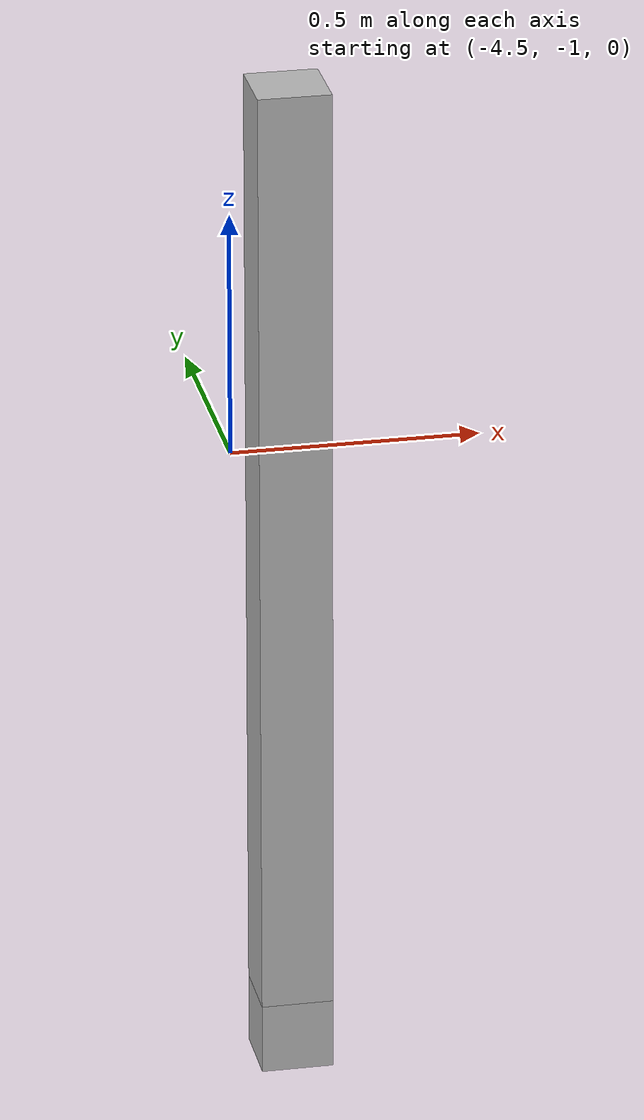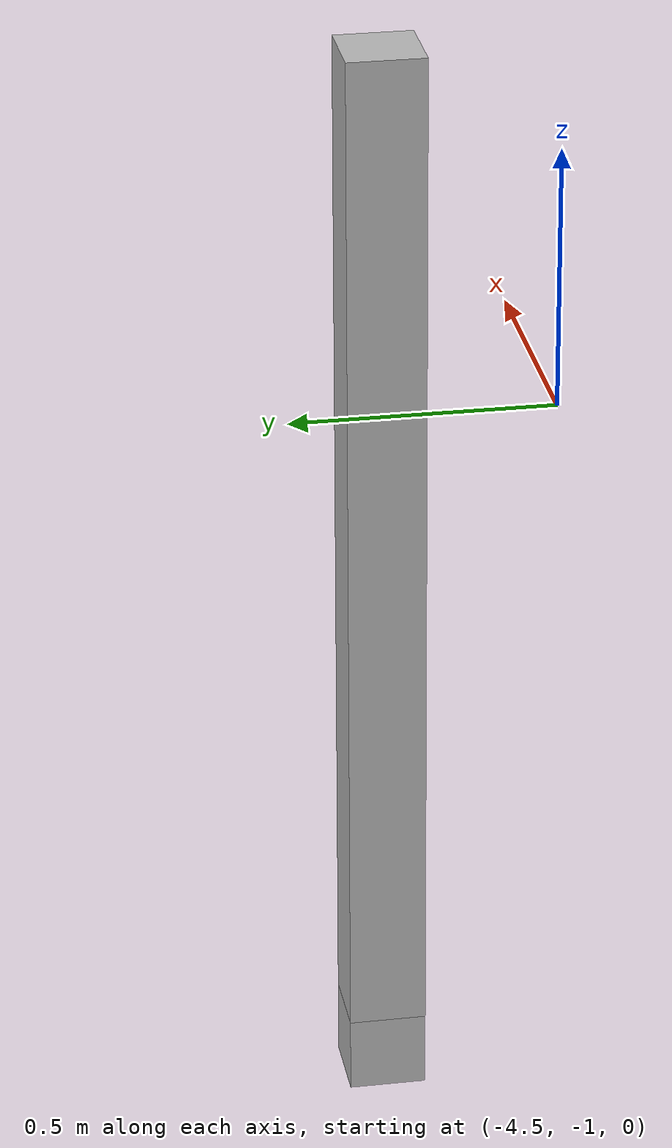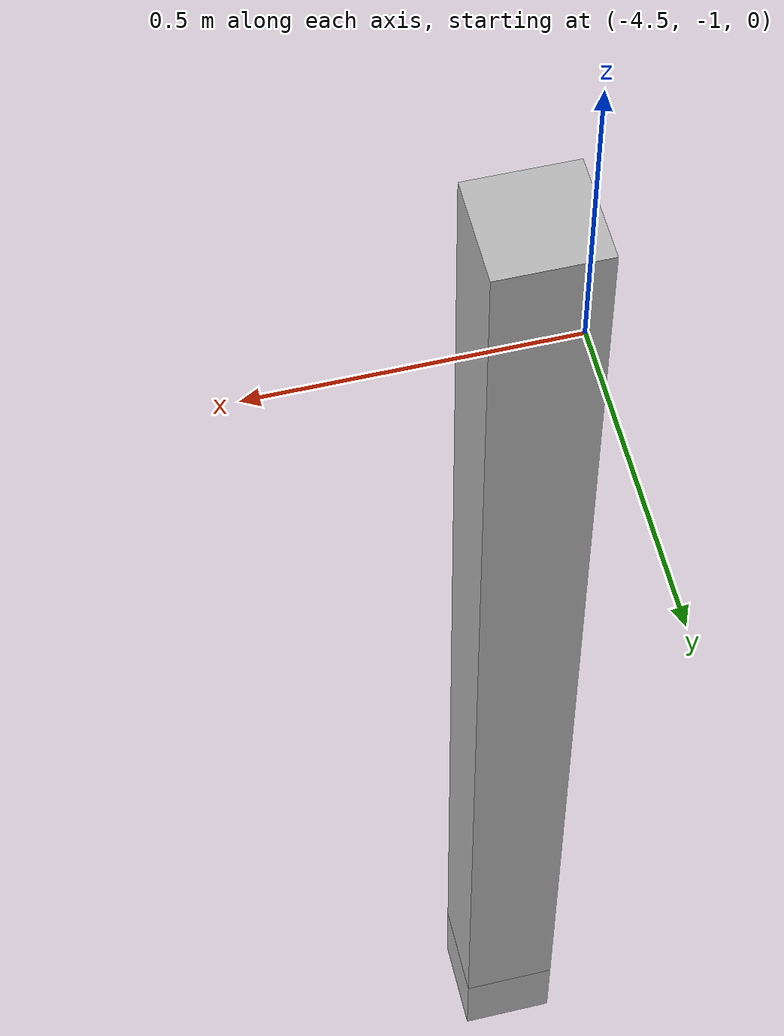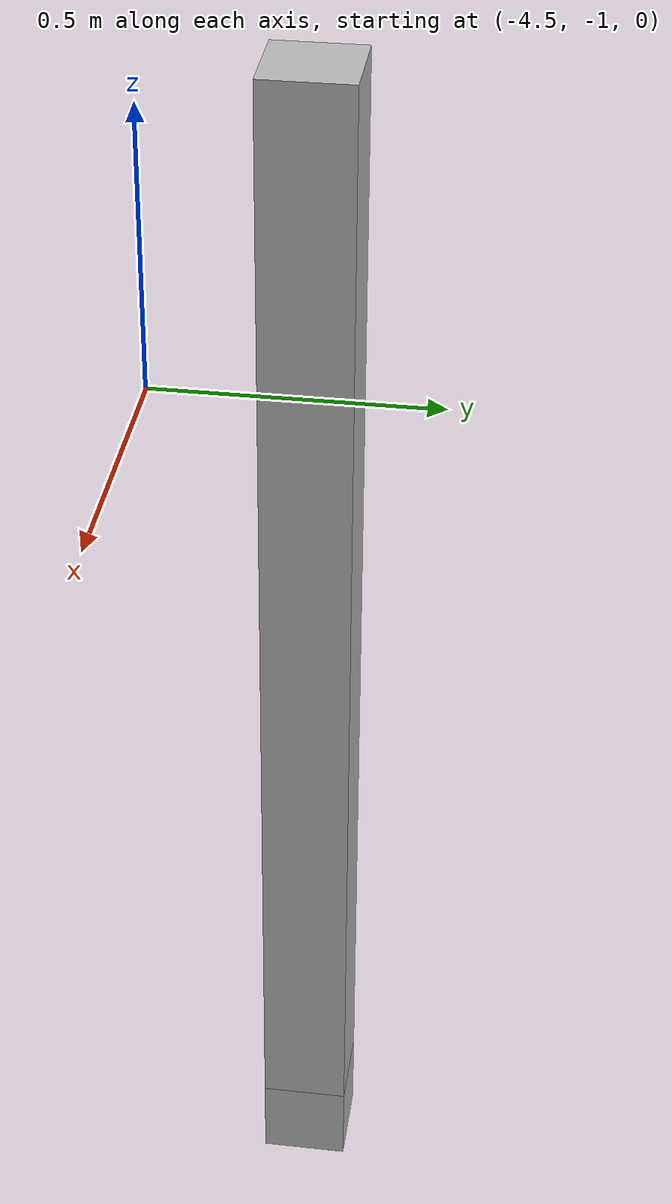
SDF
<sdf version="1.7">
 <world name="default">
  <model name="orthogonal_747_2.000.15_TS">
   <static>1</static>
   <link name="u_link_0_2_1">
    <inertial>
     <mass>1</mass>
     <inertia>
      <ixx>0.166667</ixx>
      <ixy>0</ixy>
      <ixz>0</ixz>
      <iyy>0.166667</iyy>
      <iyz>0</iyz>
      <izz>0.166667</izz>
     </inertia>
    </inertial>
    <pose>2.15 4.3 1.075 0 -0 0</pose>
    <visual name="visual_0">
     <laser_retro>358</laser_retro>
     <geometry><box><size>0.15 1e-06 0.15</size></box></geometry>
     <material>
      <script><name>Gazebo/Grey</name><uri>file://media/materials/scripts/gazebo.material</uri></script>
      <shader type="pixel"><normal_map>__default__</normal_map></shader>
      <ambient>0.678 0.498 0.659 1</ambient>
      <diffuse>0.7 0.7 0.7 1</diffuse>
      <specular>0.01 0.01 0.01 1</specular>
      <emissive>0 0 0 1</emissive>
     </material>
     <pose>0 -0.075 0 0 -0 0</pose>
     <transparency>1</transparency>
    </visual>
    <visual name="visual_1">
     <laser_retro>359</laser_retro>
     <geometry><box><size>0.15 1e-06 0.15</size></box></geometry>
     <material>
      <script><name>Gazebo/Grey</name><uri>file://media/materials/scripts/gazebo.material</uri></script>
      <shader type="pixel"><normal_map>__default__</normal_map></shader>
      <ambient>0.447 0.624 0.812 1</ambient>
      <diffuse>0.7 0.7 0.7 1</diffuse>
      <specular>0.01 0.01 0.01 1</specular>
      <emissive>0 0 0 1</emissive>
     </material>
     <pose>0 0.075 0 0 -0 0</pose>
     <transparency>1</transparency>
    </visual>
    <visual name="visual_2">
     <laser_retro>360</laser_retro>
     <geometry><box><size>0.15 0.15 1e-06</size></box></geometry>
     <material>
      <script><name>Gazebo/Grey</name><uri>file://media/materials/scripts/gazebo.material</uri></script>
      <shader type="pixel"><normal_map>__default__</normal_map></shader>
      <ambient>0.988 0.686 0.243 1</ambient>
      <diffuse>0.7 0.7 0.7 1</diffuse>
      <specular>0.01 0.01 0.01 1</specular>
      <emissive>0 0 0 1</emissive>
     </material>
     <pose>0 0 -0.075 0 -0 0</pose>
     <transparency>1</transparency>
    </visual>
    <visual name="visual_3">
     <laser_retro>361</laser_retro>
     <geometry><box><size>1e-06 0.15 0.15</size></box></geometry>
     <material>
      <script><name>Gazebo/Grey</name><uri>file://media/materials/scripts/gazebo.material</uri></script>
      <shader type="pixel"><normal_map>__default__</normal_map></shader>
      <ambient>0.988 0.914 0.31 1</ambient>
      <diffuse>0.7 0.7 0.7 1</diffuse>
      <specular>0.01 0.01 0.01 1</specular>
      <emissive>0 0 0 1</emissive>
     </material>
     <pose>0.075 0 0 0 -0 0</pose>
     <transparency>1</transparency>
    </visual>
    <visual name="visual_4">
     <laser_retro>362</laser_retro>
     <geometry><box><size>0.15 0.15 1e-06</size></box></geometry>
     <material>
      <script><name>Gazebo/Grey</name><uri>file://media/materials/scripts/gazebo.material</uri></script>
      <shader type="pixel"><normal_map>__default__</normal_map></shader>
      <ambient>0.937 0.161 0.161 1</ambient>
      <diffuse>0.7 0.7 0.7 1</diffuse>
      <specular>0.01 0.01 0.01 1</specular>
      <emissive>0 0 0 1</emissive>
     </material>
     <pose>0 0 0.075 0 -0 0</pose>
     <transparency>1</transparency>
    </visual>
    <visual name="visual_5">
     <laser_retro>363</laser_retro>
     <geometry><box><size>1e-06 0.15 0.15</size></box></geometry>
     <material>
      <script><name>Gazebo/Grey</name><uri>file://media/materials/scripts/gazebo.material</uri></script>
      <shader type="pixel"><normal_map>__default__</normal_map></shader>
      <ambient>0.541 0.886 0.204 1</ambient>
      <diffuse>0.7 0.7 0.7 1</diffuse>
      <specular>0.01 0.01 0.01 1</specular>
      <emissive>0 0 0 1</emissive>
     </material>
     <pose>-0.075 0 0 0 -0 0</pose>
     <transparency>1</transparency>
    </visual>
    <visual name="visual_texture">
     <geometry><box><size>0.149985 0.149985 0.149985</size></box></geometry>
     <material>
      <script>
       <uri>model://BASE_MODELS/simple_block_v2_textured/materials/scripts</uri>
       <uri>model://BASE_MODELS/simple_block_v2_textured/materials/textures</uri>
       <name>metal</name>
      </script>
     </material>
     <laser_retro>364</laser_retro>
    </visual>
    <collision name="collision">
     <geometry><box><size>0.15 0.15 0.15</size></box></geometry>
     <surface>
      <friction>
       <ode><mu>1</mu><mu2>1</mu2><fdir1>0 0 0</fdir1><slip1>0</slip1><slip2>0</slip2></ode>
       <torsional>
        <coefficient>1</coefficient>
        <patch_radius>0</patch_radius>
        <surface_radius>0</surface_radius>
        <use_patch_radius>1</use_patch_radius>
        <ode><slip>0</slip></ode>
       </torsional>
      </friction>
      <bounce><restitution_coefficient>0</restitution_coefficient><threshold>1e+06</threshold></bounce>
      <contact>
       <collide_without_contact>0</collide_without_contact>
       <collide_without_contact_bitmask>1</collide_without_contact_bitmask>
       <collide_bitmask>1</collide_bitmask>
       <ode>
        <soft_cfm>0</soft_cfm>
        <soft_erp>0.2</soft_erp>
        <kp>1e+13</kp>
        <kd>1</kd>
        <max_vel>0.01</max_vel>
        <min_depth>0</min_depth>
       </ode>
       <bullet>
        <split_impulse>1</split_impulse>
        <split_impulse_penetration_threshold>-0.01</split_impulse_penetration_threshold>
        <soft_cfm>0</soft_cfm>
        <soft_erp>0.2</soft_erp>
        <kp>1e+13</kp>
        <kd>1</kd>
       </bullet>
      </contact>
     </surface>
    </collision>
   </link>
   <link name="z_link_1_2_1">
    <inertial>
     <mass>1</mass>
     <inertia>
      <ixx>0.166667</ixx>
      <ixy>0</ixy>
      <ixz>0</ixz>
      <iyy>0.166667</iyy>
      <iyz>0</iyz>
      <izz>0.166667</izz>
     </inertia>
    </inertial>
    <pose>2.15 4.3 2.15 0 -0 0</pose>
    <visual name="visual_0">
     <laser_retro>1184</laser_retro>
     <geometry><box><size>0.15 1e-06 2</size></box></geometry>
     <material>
      <script><name>Gazebo/Grey</name><uri>file://media/materials/scripts/gazebo.material</uri></script>
      <shader type="pixel"><normal_map>__default__</normal_map></shader>
      <ambient>0.678 0.498 0.659 1</ambient>
      <diffuse>0.7 0.7 0.7 1</diffuse>
      <specular>0.01 0.01 0.01 1</specular>
      <emissive>0 0 0 1</emissive>
     </material>
     <pose>0 -0.075 0 0 -0 0</pose>
     <transparency>1</transparency>
    </visual>
    <visual name="visual_1">
     <laser_retro>1185</laser_retro>
     <geometry><box><size>0.15 1e-06 2</size></box></geometry>
     <material>
      <script><name>Gazebo/Grey</name><uri>file://media/materials/scripts/gazebo.material</uri></script>
      <shader type="pixel"><normal_map>__default__</normal_map></shader>
      <ambient>0.447 0.624 0.812 1</ambient>
      <diffuse>0.7 0.7 0.7 1</diffuse>
      <specular>0.01 0.01 0.01 1</specular>
      <emissive>0 0 0 1</emissive>
     </material>
     <pose>0 0.075 0 0 -0 0</pose>
     <transparency>1</transparency>
    </visual>
    <visual name="visual_2">
     <laser_retro>1186</laser_retro>
     <geometry><box><size>0.15 0.15 1e-06</size></box></geometry>
     <material>
      <script><name>Gazebo/Grey</name><uri>file://media/materials/scripts/gazebo.material</uri></script>
      <shader type="pixel"><normal_map>__default__</normal_map></shader>
      <ambient>0.988 0.686 0.243 1</ambient>
      <diffuse>0.7 0.7 0.7 1</diffuse>
      <specular>0.01 0.01 0.01 1</specular>
      <emissive>0 0 0 1</emissive>
     </material>
     <pose>0 0 -1 0 -0 0</pose>
     <transparency>1</transparency>
    </visual>
    <visual name="visual_3">
     <laser_retro>1187</laser_retro>
     <geometry><box><size>1e-06 0.15 2</size></box></geometry>
     <material>
      <script><name>Gazebo/Grey</name><uri>file://media/materials/scripts/gazebo.material</uri></script>
      <shader type="pixel"><normal_map>__default__</normal_map></shader>
      <ambient>0.988 0.914 0.31 1</ambient>
      <diffuse>0.7 0.7 0.7 1</diffuse>
      <specular>0.01 0.01 0.01 1</specular>
      <emissive>0 0 0 1</emissive>
     </material>
     <pose>0.075 0 0 0 -0 0</pose>
     <transparency>1</transparency>
    </visual>
    <visual name="visual_4">
     <laser_retro>1188</laser_retro>
     <geometry><box><size>0.15 0.15 1e-06</size></box></geometry>
     <material>
      <script><name>Gazebo/Grey</name><uri>file://media/materials/scripts/gazebo.material</uri></script>
      <shader type="pixel"><normal_map>__default__</normal_map></shader>
      <ambient>0.937 0.161 0.161 1</ambient>
      <diffuse>0.7 0.7 0.7 1</diffuse>
      <specular>0.01 0.01 0.01 1</specular>
      <emissive>0 0 0 1</emissive>
     </material>
     <pose>0 0 1 0 -0 0</pose>
     <transparency>1</transparency>
    </visual>
    <visual name="visual_5">
     <laser_retro>1189</laser_retro>
     <geometry><box><size>1e-06 0.15 2</size></box></geometry>
     <material>
      <script><name>Gazebo/Grey</name><uri>file://media/materials/scripts/gazebo.material</uri></script>
      <shader type="pixel"><normal_map>__default__</normal_map></shader>
      <ambient>0.541 0.886 0.204 1</ambient>
      <diffuse>0.7 0.7 0.7 1</diffuse>
      <specular>0.01 0.01 0.01 1</specular>
      <emissive>0 0 0 1</emissive>
     </material>
     <pose>-0.075 0 0 0 -0 0</pose>
     <transparency>1</transparency>
    </visual>
    <visual name="visual_texture">
     <geometry><box><size>0.149985 0.149985 1.9998</size></box></geometry>
     <material>
      <script>
       <uri>model://BASE_MODELS/simple_block_v2_textured/materials/scripts</uri>
       <uri>model://BASE_MODELS/simple_block_v2_textured/materials/textures</uri>
       <name>metal</name>
      </script>
     </material>
     <laser_retro>1190</laser_retro>
    </visual>
    <collision name="collision">
     <geometry><box><size>0.15 0.15 2</size></box></geometry>
     <surface>
      <friction>
       <ode><mu>1</mu><mu2>1</mu2><fdir1>0 0 0</fdir1><slip1>0</slip1><slip2>0</slip2></ode>
       <torsional>
        <coefficient>1</coefficient>
        <patch_radius>0</patch_radius>
        <surface_radius>0</surface_radius>
        <use_patch_radius>1</use_patch_radius>
        <ode><slip>0</slip></ode>
       </torsional>
      </friction>
      <bounce><restitution_coefficient>0</restitution_coefficient><threshold>1e+06</threshold></bounce>
      <contact>
       <collide_without_contact>0</collide_without_contact>
       <collide_without_contact_bitmask>1</collide_without_contact_bitmask>
       <collide_bitmask>1</collide_bitmask>
       <ode>
        <soft_cfm>0</soft_cfm>
        <soft_erp>0.2</soft_erp>
        <kp>1e+13</kp>
        <kd>1</kd>
        <max_vel>0.01</max_vel>
        <min_depth>0</min_depth>
       </ode>
       <bullet>
        <split_impulse>1</split_impulse>
        <split_impulse_penetration_threshold>-0.01</split_impulse_penetration_threshold>
        <soft_cfm>0</soft_cfm>
        <soft_erp>0.2</soft_erp>
        <kp>1e+13</kp>
        <kd>1</kd>
       </bullet>
      </contact>
     </surface>
    </collision>
   </link>
   <pose>-6.47624 -5 -2.5 0 -0 0</pose>
  </model>
 </world>
</sdf>
